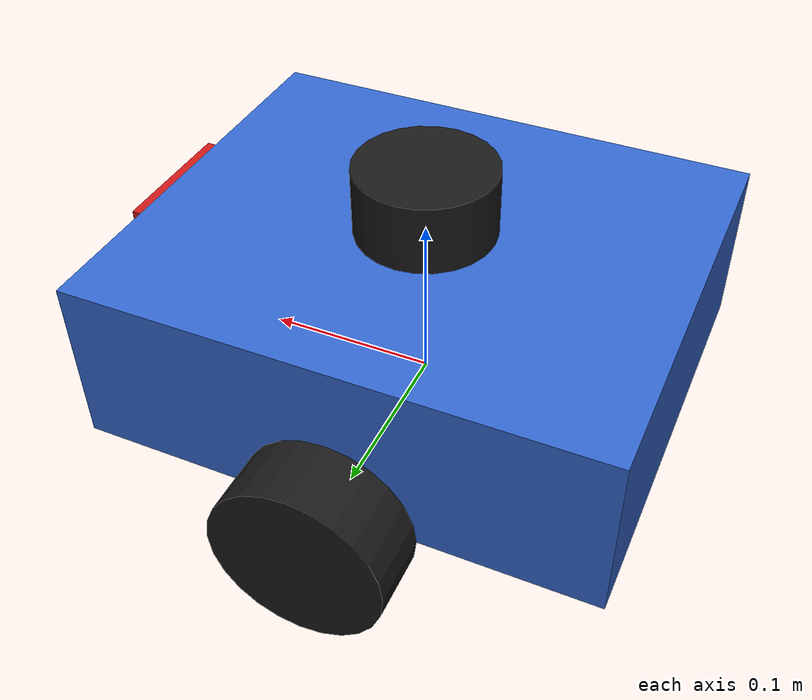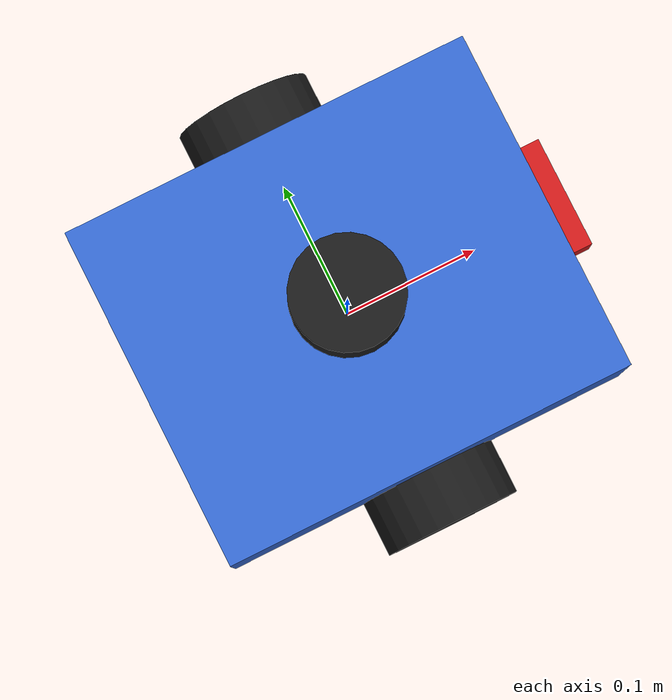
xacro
<?xml version="1.0"?>
<robot name="diff_drive_robot" xmlns:xacro="http://www.ros.org/wiki/xacro">

  <!-- ─────────────────────────────────────────
       PROPERTIES  (change these to match your
       real robot dimensions later)
  ───────────────────────────────────────────── -->
  <xacro:property name="chassis_mass"   value="5.0"/>
  <xacro:property name="chassis_l"      value="0.30"/>   <!-- length  x -->
  <xacro:property name="chassis_w"      value="0.25"/>   <!-- width   y -->
  <xacro:property name="chassis_h"      value="0.10"/>   <!-- height  z -->

  <xacro:property name="wheel_mass"     value="0.5"/>
  <xacro:property name="wheel_radius"   value="0.05"/>
  <xacro:property name="wheel_width"    value="0.04"/>

  <xacro:property name="caster_radius"  value="0.025"/>
  <xacro:property name="caster_mass"    value="0.1"/>

  <!-- wheel axle sits at chassis bottom + wheel_radius -->
  <xacro:property name="wheel_z_offset" value="-0.05"/>
  <xacro:property name="wheel_y_offset" value="0.145"/>

  <xacro:macro name="box_inertia" params="m l w h">
    <inertial>
      <mass value="${m}"/>
      <inertia
        ixx="${m/12*(w*w + h*h)}"  ixy="0" ixz="0"
        iyy="${m/12*(l*l + h*h)}"  iyz="0"
        izz="${m/12*(l*l + w*w)}"/>
    </inertial>
  </xacro:macro>

  <xacro:macro name="cylinder_inertia" params="m r h">
    <inertial>
      <mass value="${m}"/>
      <inertia
        ixx="${m/12*(3*r*r + h*h)}"  ixy="0" ixz="0"
        iyy="${m/12*(3*r*r + h*h)}"  iyz="0"
        izz="${m/2*r*r}"/>
    </inertial>
  </xacro:macro>

  <xacro:macro name="sphere_inertia" params="m r">
    <inertial>
      <mass value="${m}"/>
      <inertia
        ixx="${2/5*m*r*r}"  ixy="0" ixz="0"
        iyy="${2/5*m*r*r}"  iyz="0"
        izz="${2/5*m*r*r}"/>
    </inertial>
  </xacro:macro>

  <!-- ─────────────────────────────────────────
       BASE FOOTPRINT  (ground reference frame)
  ───────────────────────────────────────────── -->
  <link name="base_footprint"/>

  <joint name="base_footprint_joint" type="fixed">
    <parent link="base_footprint"/>
    <child  link="base_link"/>
    <origin xyz="0 0 ${wheel_radius}" rpy="0 0 0"/>
  </joint>

  <!-- ─────────────────────────────────────────
       CHASSIS
  ───────────────────────────────────────────── -->
  <link name="base_link">
    <visual>
      <geometry>
        <box size="${chassis_l} ${chassis_w} ${chassis_h}"/>
      </geometry>
      <material name="blue">
        <color rgba="0.2 0.4 0.8 1.0"/>
      </material>
    </visual>
    <collision>
      <geometry>
        <box size="${chassis_l} ${chassis_w} ${chassis_h}"/>
      </geometry>
    </collision>
    <xacro:box_inertia m="${chassis_mass}"
                       l="${chassis_l}"
                       w="${chassis_w}"
                       h="${chassis_h}"/>
  </link>

  <!-- ─────────────────────────────────────────
       WHEEL MACRO  (reused for left + right)
  ───────────────────────────────────────────── -->
  <xacro:macro name="wheel" params="name y_reflect">
    <link name="${name}_wheel">
      <visual>
        <geometry>
          <cylinder radius="${wheel_radius}" length="${wheel_width}"/>
        </geometry>
        <material name="black">
          <color rgba="0.1 0.1 0.1 1.0"/>
        </material>
      </visual>
      <collision>
        <geometry>
          <cylinder radius="${wheel_radius}" length="${wheel_width}"/>
        </geometry>
        <surface>
          <friction>
            <ode>
              <mu>1.5</mu>    <!-- static  friction μ₁ -->
              <mu2>1.5</mu2>  <!-- dynamic friction μ₂ -->
            </ode>
          </friction>
        </surface>
      </collision>
      <xacro:cylinder_inertia m="${wheel_mass}"
                               r="${wheel_radius}"
                               h="${wheel_width}"/>
    </link>

    <joint name="${name}_wheel_joint" type="continuous">
      <parent link="base_link"/>
      <child  link="${name}_wheel"/>
      <!-- rotate 90° so cylinder axis aligns with Y (axle direction) -->
      <origin xyz="0 ${y_reflect * wheel_y_offset} ${wheel_z_offset}"
              rpy="${pi/2} 0 0"/>
      <axis xyz="0 0 1"/>
      <dynamics damping="0.01" friction="0.01"/>
    </joint>
  </xacro:macro>

  <xacro:wheel name="left"  y_reflect=" 1"/>
  <xacro:wheel name="right" y_reflect="-1"/>

  <!-- ─────────────────────────────────────────
       CASTER WHEEL  (zero friction — pure pivot)
  ───────────────────────────────────────────── -->
  <link name="caster_wheel">
    <visual>
      <geometry>
        <sphere radius="${caster_radius}"/>
      </geometry>
      <material name="grey">
        <color rgba="0.6 0.6 0.6 1.0"/>
      </material>
    </visual>
    <collision>
      <geometry>
        <sphere radius="${caster_radius}"/>
      </geometry>
      <surface>
        <friction>
          <ode>
            <mu>0.0</mu>   <!-- μ₁ = 0 : mathematically pure pivot -->
            <mu2>0.0</mu2> <!-- μ₂ = 0 -->
          </ode>
        </friction>
      </surface>
    </collision>
    <xacro:sphere_inertia m="${caster_mass}" r="${caster_radius}"/>
  </link>

  <joint name="caster_joint" type="fixed">
    <parent link="base_link"/>
    <child  link="caster_wheel"/>
    <origin xyz="${-chassis_l/2 + caster_radius} 0 ${wheel_z_offset}"
            rpy="0 0 0"/>
  </joint>

  <!-- ─────────────────────────────────────────
       2D LiDAR
  ───────────────────────────────────────────── -->
  <link name="lidar_link">
    <visual>
      <geometry>
        <cylinder radius="0.04" length="0.04"/>
      </geometry>
      <material name="black">
        <color rgba="0.1 0.1 0.1 1.0"/>
      </material>
    </visual>
    <collision>
      <geometry>
        <cylinder radius="0.04" length="0.04"/>
      </geometry>

    </collision>
    <inertial>
      <mass value="0.1"/>
      <inertia ixx="0.0001" ixy="0" ixz="0"
               iyy="0.0001" iyz="0"
               izz="0.0001"/>
    </inertial>
  </link>

  <joint name="lidar_joint" type="fixed">
    <parent link="base_link"/>
    <child  link="lidar_link"/>
    <origin xyz="0 0 ${chassis_h/2 + 0.02}" rpy="0 0 0"/>
  </joint>

  <!-- ─────────────────────────────────────────
       RGB CAMERA
  ───────────────────────────────────────────── -->
  <link name="camera_link">
    <visual>
      <geometry>
        <box size="0.03 0.08 0.03"/>
      </geometry>
      <material name="red">
        <color rgba="0.8 0.1 0.1 1.0"/>
      </material>
    </visual>
    <collision>
      <geometry>
        <box size="0.03 0.08 0.03"/>
      </geometry>
    </collision>
    <inertial>
      <mass value="0.05"/>
      <inertia ixx="0.0001" ixy="0" ixz="0"
               iyy="0.0001" iyz="0"
               izz="0.0001"/>
    </inertial>
  </link>

  <joint name="camera_joint" type="fixed">
    <parent link="base_link"/>
    <child  link="camera_link"/>
    <origin xyz="${chassis_l/2} 0 ${chassis_h/4}" rpy="0 0 0"/>
  </joint>

  <!-- Camera optical frame (ROS convention: Z forward, X right, Y down) -->
  <link name="camera_optical_link"/>
  <joint name="camera_optical_joint" type="fixed">
    <parent link="camera_link"/>
    <child  link="camera_optical_link"/>
    <origin xyz="0 0 0" rpy="${-pi/2} 0 ${-pi/2}"/>
  </joint>

  <!-- ─────────────────────────────────────────
       GAZEBO PLUGINS
  ───────────────────────────────────────────── -->

  <!-- Differential drive controller -->
  <gazebo>
    <plugin filename="gz-sim-diff-drive-system"
            name="gz::sim::systems::DiffDrive">
      <left_joint>left_wheel_joint</left_joint>
      <right_joint>right_wheel_joint</right_joint>
      <wheel_separation>0.29</wheel_separation>
      <wheel_radius>0.05</wheel_radius>
      <odom_publish_frequency>50</odom_publish_frequency>
      <topic>cmd_vel</topic>
      <odom_topic>odom</odom_topic>
      <frame_id>odom</frame_id>
      <child_frame_id>base_footprint</child_frame_id>
    </plugin>
  </gazebo>

  <!-- 2D LiDAR -->
  <gazebo reference="lidar_link">
    <sensor name="lidar" type="gpu_lidar">
      <topic>scan</topic>
      <update_rate>10</update_rate>
      <lidar>
        <scan>
          <horizontal>
            <samples>360</samples>
            <resolution>1</resolution>
            <min_angle>-3.14159</min_angle>
            <max_angle>3.14159</max_angle>
          </horizontal>
        </scan>
        <range>
          <min>0.12</min>
          <max>10.0</max>
          <resolution>0.01</resolution>
        </range>
      </lidar>
      <always_on>1</always_on>
      <visualize>true</visualize>
    </sensor>
  </gazebo>

  <!-- RGB Camera -->
  <gazebo reference="camera_link">
    <sensor name="camera" type="camera">
      <topic>camera/image</topic>
      <update_rate>30</update_rate>
      <camera>
        <horizontal_fov>1.047</horizontal_fov>
        <image>
          <width>640</width>
          <height>480</height>
          <format>R8G8B8</format>
        </image>
        <clip>
          <near>0.1</near>
          <far>100</far>
        </clip>
      </camera>
      <always_on>1</always_on>
      <visualize>true</visualize>
    </sensor>
  </gazebo>
</robot>
